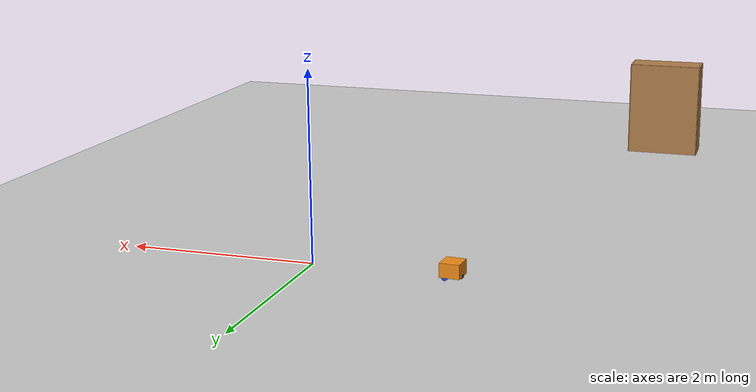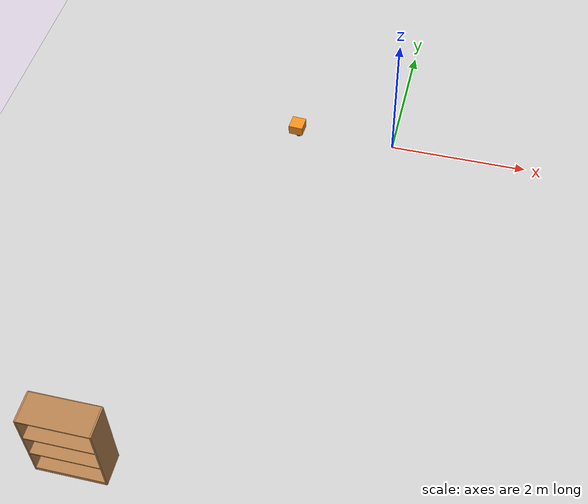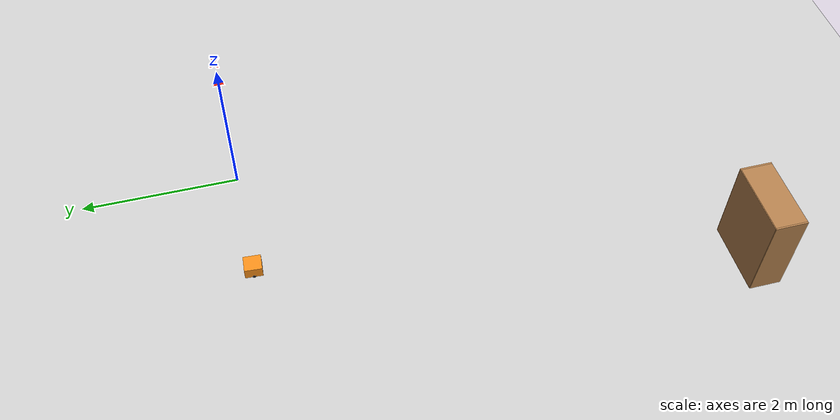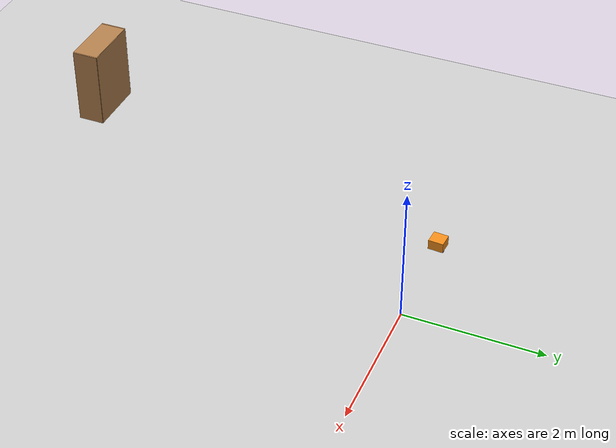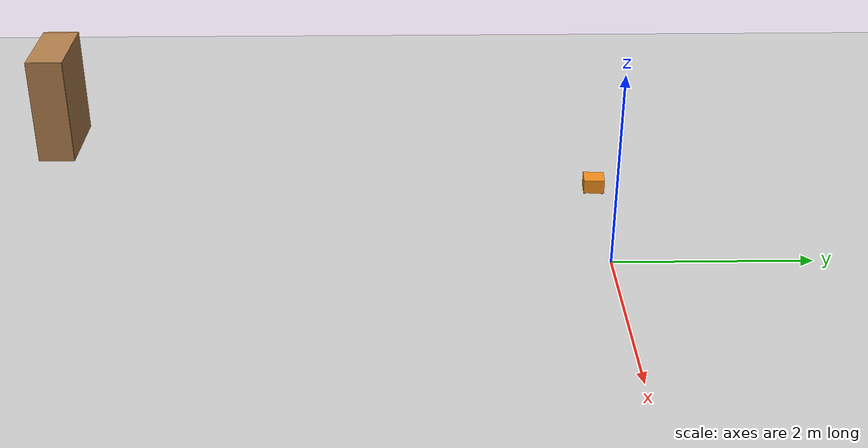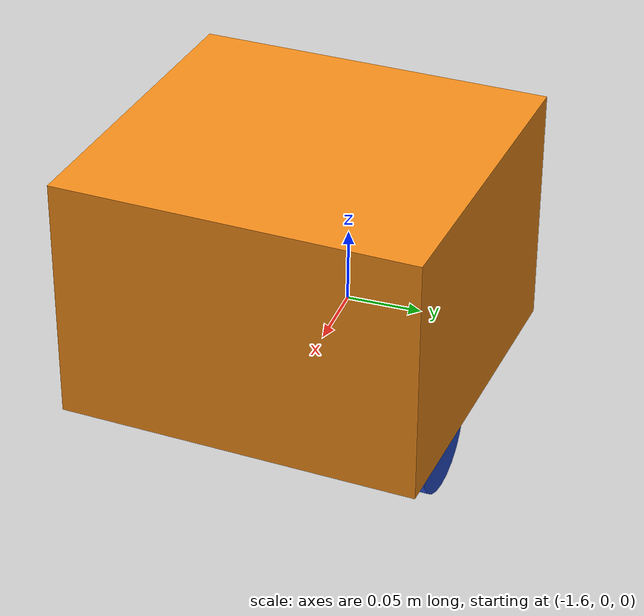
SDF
<sdf version="1.7">
 <world name="default">
  <light name="sun" type="directional">
   <pose>0 0 10 0 -0 0</pose>
   <diffuse>0.8 0.8 0.8 1</diffuse>
   <specular>0.2 0.2 0.2 1</specular>
   <attenuation>
    <range>1000</range>
    <constant>0.9</constant>
    <linear>0.01</linear>
    <quadratic>0.001</quadratic>
   </attenuation>
   <direction>-0.5 0.1 -0.9</direction>
   <spot><inner_angle>0</inner_angle><outer_angle>0</outer_angle><falloff>0</falloff></spot>
  </light>
  <model name="ground_plane">
   <static>1</static>
   <link name="link">
    <collision name="collision">
     <geometry><plane><normal>0 0 1</normal><size>100 100</size></plane></geometry>
     <surface>
      <contact><collide_bitmask>65535</collide_bitmask></contact>
      <friction><ode><mu>100</mu><mu2>50</mu2></ode></friction>
     </surface>
    </collision>
    <visual name="visual">
     <cast_shadows>0</cast_shadows>
     <geometry><plane><normal>0 0 1</normal><size>100 100</size></plane></geometry>
     <material>
      <script><uri>file://media/materials/scripts/gazebo.material</uri><name>Gazebo/Grey</name></script>
     </material>
    </visual>
   </link>
  </model>
  <gravity>0 0 -9.8</gravity>
  <magnetic_field>6e-06 2.3e-05 -4.2e-05</magnetic_field>
  <atmosphere type="adiabatic"/>
  <physics type="ode">
   <max_step_size>0.001</max_step_size>
   <real_time_factor>1</real_time_factor>
   <real_time_update_rate>1000</real_time_update_rate>
  </physics>
  <scene><ambient>0.4 0.4 0.4 1</ambient><background>0.7 0.7 0.7 1</background><shadows>1</shadows></scene>
  <audio><device>default</device></audio>
  <spherical_coordinates>
   <surface_model>EARTH_WGS84</surface_model>
   <latitude_deg>0</latitude_deg>
   <longitude_deg>0</longitude_deg>
   <elevation>0</elevation>
   <heading_deg>0</heading_deg>
  </spherical_coordinates>
  <model name="my_bot">
   <link name="base_link">
    <inertial>
     <pose>-0.060435 0 0.06087 0 -0 0</pose>
     <mass>0.575</mass>
     <inertia>
      <ixx>0.00330841</ixx>
      <ixy>0</ixy>
      <ixz>-0.000365217</ixz>
      <iyy>0.00354664</iyy>
      <iyz>0</iyz>
      <izz>0.00430624</izz>
     </inertia>
    </inertial>
    <collision name="base_link_fixed_joint_lump__chassis_collision">
     <pose>-0.05 0 0.07 0 -0 0</pose>
     <geometry><box><size>0.21 0.22 0.15</size></box></geometry>
    </collision>
    <collision name="base_link_fixed_joint_lump__caster_wheel_collision_1">
     <pose>-0.13 0 0 0 -0 0</pose>
     <geometry><sphere><radius>0.034</radius></sphere></geometry>
     <surface><friction><ode><mu>0.001</mu><mu2>0.001</mu2></ode></friction></surface>
    </collision>
    <visual name="base_link_fixed_joint_lump__chassis_visual">
     <pose>-0.05 0 0.07 0 -0 0</pose>
     <geometry><box><size>0.21 0.22 0.15</size></box></geometry>
     <material>
      <script><name>Gazebo/Orange</name><uri>file://media/materials/scripts/gazebo.material</uri></script>
     </material>
    </visual>
    <visual name="base_link_fixed_joint_lump__caster_wheel_visual_1">
     <pose>-0.13 0 0 0 -0 0</pose>
     <geometry><sphere><radius>0.034</radius></sphere></geometry>
     <material>
      <script><name>Gazebo/Black</name><uri>file://media/materials/scripts/gazebo.material</uri></script>
     </material>
    </visual>
   </link>
   <joint name="left_wheel_joint" type="revolute">
    <pose relative_to="base_link">0 0.094 0 -1.5708 0 0</pose>
    <parent>base_link</parent>
    <child>left_wheel</child>
    <axis>
     <xyz>0 0 1</xyz>
     <limit><lower>-1e+16</lower><upper>1e+16</upper></limit>
     <dynamics><spring_reference>0</spring_reference><spring_stiffness>0</spring_stiffness></dynamics>
    </axis>
   </joint>
   <link name="left_wheel">
    <pose relative_to="left_wheel_joint">0 0 0 0 -0 0</pose>
    <inertial>
     <mass>0.075</mass>
     <inertia>
      <ixx>2.55813e-05</ixx>
      <ixy>0</ixy>
      <ixz>0</ixz>
      <iyy>2.55813e-05</iyy>
      <iyz>0</iyz>
      <izz>4.335e-05</izz>
     </inertia>
    </inertial>
    <collision name="left_wheel_collision">
     <geometry><cylinder><length>0.025</length><radius>0.034</radius></cylinder></geometry>
    </collision>
    <visual name="left_wheel_visual">
     <geometry><cylinder><length>0.025</length><radius>0.034</radius></cylinder></geometry>
     <material>
      <script><name>Gazebo/Blue</name><uri>file://media/materials/scripts/gazebo.material</uri></script>
     </material>
    </visual>
   </link>
   <joint name="right_wheel_joint" type="revolute">
    <pose relative_to="base_link">0 -0.094 0 1.5708 -0 0</pose>
    <parent>base_link</parent>
    <child>right_wheel</child>
    <axis>
     <xyz>0 0 -1</xyz>
     <limit><lower>-1e+16</lower><upper>1e+16</upper></limit>
     <dynamics><spring_reference>0</spring_reference><spring_stiffness>0</spring_stiffness></dynamics>
    </axis>
   </joint>
   <link name="right_wheel">
    <pose relative_to="right_wheel_joint">0 0 0 0 -0 0</pose>
    <inertial>
     <mass>0.075</mass>
     <inertia>
      <ixx>2.55813e-05</ixx>
      <ixy>0</ixy>
      <ixz>0</ixz>
      <iyy>2.55813e-05</iyy>
      <iyz>0</iyz>
      <izz>4.335e-05</izz>
     </inertia>
    </inertial>
    <collision name="right_wheel_collision">
     <geometry><cylinder><length>0.025</length><radius>0.034</radius></cylinder></geometry>
    </collision>
    <visual name="right_wheel_visual">
     <geometry><cylinder><length>0.025</length><radius>0.034</radius></cylinder></geometry>
     <material>
      <script><name>Gazebo/Blue</name><uri>file://media/materials/scripts/gazebo.material</uri></script>
     </material>
    </visual>
   </link>
   <static>0</static>
   <plugin name="diff_drive" filename="libgazebo_ros_diff_drive.so">
    <left_joint>left_wheel_joint</left_joint>
    <right_joint>right_wheel_joint</right_joint>
    <wheel_separation>0.188</wheel_separation>
    <wheel_diameter>0.068</wheel_diameter>
    <max_wheel_torque>200</max_wheel_torque>
    <max_wheel_acceleration>10.0</max_wheel_acceleration>
    <odometry_frame>odom</odometry_frame>
    <robot_base_frame>base_link</robot_base_frame>
    <publish_odom>1</publish_odom>
    <publish_odom_tf>1</publish_odom_tf>
    <publish_wheel_tf>1</publish_wheel_tf>
   </plugin>
   <pose>-1.43287 0.009168 0.034 -3e-06 -2e-05 -0.063042</pose>
  </model>
  <model name="bookshelf">
   <static>1</static>
   <link name="link">
    <inertial><mass>1</mass></inertial>
    <collision name="back">
     <pose>0 0.005 0.6 0 -0 0</pose>
     <geometry><box><size>0.9 0.01 1.2</size></box></geometry>
    </collision>
    <visual name="visual1">
     <pose>0 0.005 0.6 0 -0 0</pose>
     <geometry><box><size>0.9 0.01 1.2</size></box></geometry>
     <material>
      <script><uri>file://media/materials/scripts/gazebo.material</uri><name>Gazebo/Wood</name></script>
     </material>
    </visual>
    <collision name="left_side">
     <pose>0.45 -0.195 0.6 0 -0 0</pose>
     <geometry><box><size>0.02 0.4 1.2</size></box></geometry>
    </collision>
    <visual name="visual2">
     <pose>0.45 -0.195 0.6 0 -0 0</pose>
     <geometry><box><size>0.02 0.4 1.2</size></box></geometry>
     <material>
      <script><uri>file://media/materials/scripts/gazebo.material</uri><name>Gazebo/Wood</name></script>
     </material>
    </visual>
    <collision name="right_side">
     <pose>-0.45 -0.195 0.6 0 -0 0</pose>
     <geometry><box><size>0.02 0.4 1.2</size></box></geometry>
    </collision>
    <visual name="visual3">
     <pose>-0.45 -0.195 0.6 0 -0 0</pose>
     <geometry><box><size>0.02 0.4 1.2</size></box></geometry>
     <material>
      <script><uri>file://media/materials/scripts/gazebo.material</uri><name>Gazebo/Wood</name></script>
     </material>
    </visual>
    <collision name="bottom">
     <pose>0 -0.195 0.03 0 -0 0</pose>
     <geometry><box><size>0.88 0.4 0.06</size></box></geometry>
    </collision>
    <visual name="visual4">
     <pose>0 -0.195 0.03 0 -0 0</pose>
     <geometry><box><size>0.88 0.4 0.06</size></box></geometry>
     <material>
      <script><uri>file://media/materials/scripts/gazebo.material</uri><name>Gazebo/Wood</name></script>
     </material>
    </visual>
    <collision name="top">
     <pose>0 -0.195 1.19 0 -0 0</pose>
     <geometry><box><size>0.88 0.4 0.02</size></box></geometry>
    </collision>
    <visual name="visual5">
     <pose>0 -0.195 1.19 0 -0 0</pose>
     <geometry><box><size>0.88 0.4 0.02</size></box></geometry>
     <material>
      <script><uri>file://media/materials/scripts/gazebo.material</uri><name>Gazebo/Wood</name></script>
     </material>
    </visual>
    <collision name="low_shelf">
     <pose>0 -0.195 0.43 0 -0 0</pose>
     <geometry><box><size>0.88 0.4 0.02</size></box></geometry>
    </collision>
    <visual name="visual6">
     <pose>0 -0.195 0.43 0 -0 0</pose>
     <geometry><box><size>0.88 0.4 0.02</size></box></geometry>
     <material>
      <script><uri>file://media/materials/scripts/gazebo.material</uri><name>Gazebo/Wood</name></script>
     </material>
    </visual>
    <collision name="high_shelf">
     <pose>0 -0.195 0.8 0 -0 0</pose>
     <geometry><box><size>0.88 0.4 0.02</size></box></geometry>
    </collision>
    <visual name="visual7">
     <pose>0 -0.195 0.8 0 -0 0</pose>
     <geometry><box><size>0.88 0.4 0.02</size></box></geometry>
     <material>
      <script><uri>file://media/materials/scripts/gazebo.material</uri><name>Gazebo/Wood</name></script>
     </material>
    </visual>
   </link>
   <pose>-2.75114 -5.77421 0 0 -0 0</pose>
  </model>
 </world>
</sdf>
